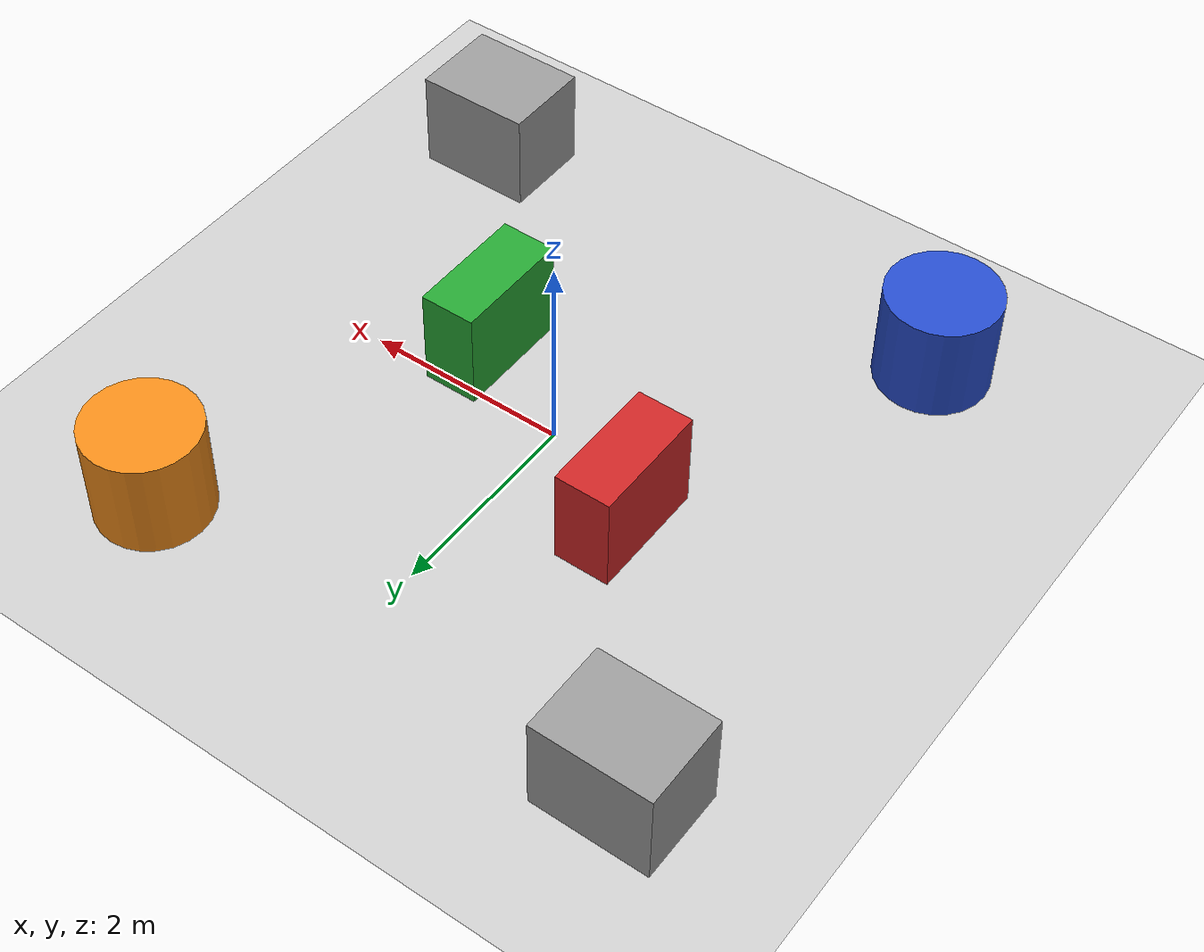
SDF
<sdf version="1.6">
 <world name="default">
  <plugin name="gazebo_ros_state" filename="libgazebo_ros_state.so">
   <ros><namespace>/gazebo</namespace></ros>
   <update_rate>1.0</update_rate>
  </plugin>
  <include><uri>model://ground_plane</uri></include>
  <include><uri>model://sun</uri></include>
  <scene><shadows>false</shadows></scene>
  <physics type="ode">
   <real_time_update_rate>2500.0</real_time_update_rate>
   <max_step_size>0.001</max_step_size>
   <real_time_factor>2.5</real_time_factor>
   <ode>
    <solver>
     <type>quick</type>
     <iters>150</iters>
     <precon_iters>0</precon_iters>
     <sor>1.400000</sor>
     <use_dynamic_moi_rescaling>1</use_dynamic_moi_rescaling>
    </solver>
    <constraints>
     <cfm>0.00001</cfm>
     <erp>0.2</erp>
     <contact_max_correcting_vel>2000.000000</contact_max_correcting_vel>
     <contact_surface_layer>0.01000</contact_surface_layer>
    </constraints>
   </ode>
  </physics>
  <model name="obstacle1">
   <pose>-2.70 2.75 0 0 0 0</pose>
   <static>true</static>
   <link name="link">
    <collision name="collision">
     <pose>0 0 0.50 0 0 0</pose>
     <geometry><box><size>1.15 0.90 1.00</size></box></geometry>
    </collision>
    <visual name="visual">
     <pose>0 0 0.50 0 0 0</pose>
     <geometry><box><size>1.15 0.90 1.00</size></box></geometry>
     <material>
      <script><uri>file://media/materials/scripts/gazebo.material</uri><name>Gazebo/Grey</name></script>
     </material>
    </visual>
   </link>
  </model>
  <model name="obstacle2">
   <pose>2.30 2.70 0 0 0 0</pose>
   <static>true</static>
   <link name="link">
    <collision name="collision">
     <pose>0 0 0.50 0 0 0</pose>
     <geometry><cylinder><radius>0.55</radius><length>1.00</length></cylinder></geometry>
    </collision>
    <visual name="visual">
     <pose>0 0 0.50 0 0 0</pose>
     <geometry><cylinder><radius>0.55</radius><length>1.00</length></cylinder></geometry>
     <material>
      <script><uri>file://media/materials/scripts/gazebo.material</uri><name>Gazebo/Orange</name></script>
     </material>
    </visual>
   </link>
  </model>
  <model name="obstacle3">
   <pose>-2.30 -2.70 0 0 0 0</pose>
   <static>true</static>
   <link name="link">
    <collision name="collision">
     <pose>0 0 0.50 0 0 0</pose>
     <geometry><cylinder><radius>0.55</radius><length>1.00</length></cylinder></geometry>
    </collision>
    <visual name="visual">
     <pose>0 0 0.50 0 0 0</pose>
     <geometry><cylinder><radius>0.55</radius><length>1.00</length></cylinder></geometry>
     <material>
      <script><uri>file://media/materials/scripts/gazebo.material</uri><name>Gazebo/Blue</name></script>
     </material>
    </visual>
   </link>
  </model>
  <model name="obstacle4">
   <pose>2.70 -2.75 0 0 0 0</pose>
   <static>true</static>
   <link name="link">
    <collision name="collision">
     <pose>0 0 0.50 0 0 0</pose>
     <geometry><box><size>1.15 0.90 1.00</size></box></geometry>
    </collision>
    <visual name="visual">
     <pose>0 0 0.50 0 0 0</pose>
     <geometry><box><size>1.15 0.90 1.00</size></box></geometry>
     <material>
      <script><uri>file://media/materials/scripts/gazebo.material</uri><name>Gazebo/Grey</name></script>
     </material>
    </visual>
   </link>
  </model>
  <model name="obstacle5">
   <pose>-1.10 0.50 0 0 0 0</pose>
   <static>true</static>
   <link name="link">
    <collision name="collision">
     <pose>0 0 0.50 0 0 0</pose>
     <geometry><box><size>0.55 1.20 1.00</size></box></geometry>
    </collision>
    <visual name="visual">
     <pose>0 0 0.50 0 0 0</pose>
     <geometry><box><size>0.55 1.20 1.00</size></box></geometry>
     <material>
      <script><uri>file://media/materials/scripts/gazebo.material</uri><name>Gazebo/Red</name></script>
     </material>
    </visual>
   </link>
  </model>
  <model name="obstacle6">
   <pose>1.10 -0.50 0 0 0 0</pose>
   <static>true</static>
   <link name="link">
    <collision name="collision">
     <pose>0 0 0.50 0 0 0</pose>
     <geometry><box><size>0.55 1.20 1.00</size></box></geometry>
    </collision>
    <visual name="visual">
     <pose>0 0 0.50 0 0 0</pose>
     <geometry><box><size>0.55 1.20 1.00</size></box></geometry>
     <material>
      <script><uri>file://media/materials/scripts/gazebo.material</uri><name>Gazebo/Green</name></script>
     </material>
    </visual>
   </link>
  </model>
 </world>
</sdf>
